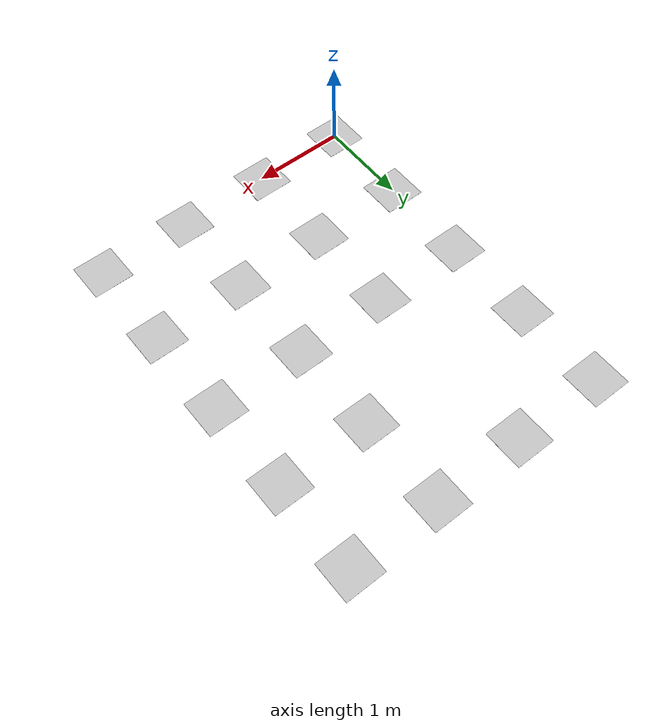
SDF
<sdf version="1.5">
 <world name="default">
  <include><uri>model://aruco_nto_map_txt</uri></include>
  <include><uri>model://aruco_nto_map_txt</uri></include>
  <include><uri>model://sun</uri></include>
  <scene>
   <ambient>0.8 0.8 0.8 1</ambient>
   <background>0.8 0.9 1 1</background>
   <shadows>false</shadows>
   <grid>false</grid>
   <origin_visual>false</origin_visual>
  </scene>
  <physics name="default_physics" default="0" type="ode">
   <gravity>0 0 -9.8066</gravity>
   <ode>
    <solver>
     <type>quick</type>
     <iters>10</iters>
     <sor>1.3</sor>
     <use_dynamic_moi_rescaling>0</use_dynamic_moi_rescaling>
    </solver>
    <constraints>
     <cfm>0</cfm>
     <erp>0.2</erp>
     <contact_max_correcting_vel>100</contact_max_correcting_vel>
     <contact_surface_layer>0.001</contact_surface_layer>
    </constraints>
   </ode>
   <max_step_size>0.004</max_step_size>
   <real_time_factor>1</real_time_factor>
   <real_time_update_rate>250</real_time_update_rate>
   <magnetic_field>6.0e-6 2.3e-5 -4.2e-5</magnetic_field>
  </physics>
 </world>
</sdf>

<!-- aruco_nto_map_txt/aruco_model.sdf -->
<sdf version="1.5">
    <model name="aruco_2_19">
        <static>true</static>
        <link name="aruco_2_19_link">

<visual name="visual_marker_2_143">
    <pose>0.0 0.0 0.0 0.0 0.0 1.5707963267948966</pose>
    <cast_shadows>false</cast_shadows>
    <geometry>
        <box>
            <size>0.44 0.44 1e-3</size>
        </box>
    </geometry>
    <material>
        <script>
            <uri>model://aruco_nto_map_txt/materials/scripts</uri>
            <uri>model://aruco_nto_map_txt/materials/textures</uri>
            <name>aruco/marker_2_143</name>
        </script>
    </material>
</visual>

<visual name="visual_marker_2_142">
    <pose>1.0 0.0 0.0 0.0 0.0 1.5707963267948966</pose>
    <cast_shadows>false</cast_shadows>
    <geometry>
        <box>
            <size>0.44 0.44 1e-3</size>
        </box>
    </geometry>
    <material>
        <script>
            <uri>model://aruco_nto_map_txt/materials/scripts</uri>
            <uri>model://aruco_nto_map_txt/materials/textures</uri>
            <name>aruco/marker_2_142</name>
        </script>
    </material>
</visual>

<visual name="visual_marker_2_147">
    <pose>2.0 0.0 0.0 0.0 0.0 1.5707963267948966</pose>
    <cast_shadows>false</cast_shadows>
    <geometry>
        <box>
            <size>0.44 0.44 1e-3</size>
        </box>
    </geometry>
    <material>
        <script>
            <uri>model://aruco_nto_map_txt/materials/scripts</uri>
            <uri>model://aruco_nto_map_txt/materials/textures</uri>
            <name>aruco/marker_2_147</name>
        </script>
    </material>
</visual>

<visual name="visual_marker_2_128">
    <pose>3.0 0.0 0.0 0.0 0.0 1.5707963267948966</pose>
    <cast_shadows>false</cast_shadows>
    <geometry>
        <box>
            <size>0.44 0.44 1e-3</size>
        </box>
    </geometry>
    <material>
        <script>
            <uri>model://aruco_nto_map_txt/materials/scripts</uri>
            <uri>model://aruco_nto_map_txt/materials/textures</uri>
            <name>aruco/marker_2_128</name>
        </script>
    </material>
</visual>

<visual name="visual_marker_2_144">
    <pose>0.0 1.0 0.0 0.0 0.0 1.5707963267948966</pose>
    <cast_shadows>false</cast_shadows>
    <geometry>
        <box>
            <size>0.44 0.44 1e-3</size>
        </box>
    </geometry>
    <material>
        <script>
            <uri>model://aruco_nto_map_txt/materials/scripts</uri>
            <uri>model://aruco_nto_map_txt/materials/textures</uri>
            <name>aruco/marker_2_144</name>
        </script>
    </material>
</visual>

<visual name="visual_marker_2_157">
    <pose>1.0 1.0 0.0 0.0 0.0 1.5707963267948966</pose>
    <cast_shadows>false</cast_shadows>
    <geometry>
        <box>
            <size>0.44 0.44 1e-3</size>
        </box>
    </geometry>
    <material>
        <script>
            <uri>model://aruco_nto_map_txt/materials/scripts</uri>
            <uri>model://aruco_nto_map_txt/materials/textures</uri>
            <name>aruco/marker_2_157</name>
        </script>
    </material>
</visual>

<visual name="visual_marker_2_158">
    <pose>2.0 1.0 0.0 0.0 0.0 1.5707963267948966</pose>
    <cast_shadows>false</cast_shadows>
    <geometry>
        <box>
            <size>0.44 0.44 1e-3</size>
        </box>
    </geometry>
    <material>
        <script>
            <uri>model://aruco_nto_map_txt/materials/scripts</uri>
            <uri>model://aruco_nto_map_txt/materials/textures</uri>
            <name>aruco/marker_2_158</name>
        </script>
    </material>
</visual>

<visual name="visual_marker_2_125">
    <pose>3.0 1.0 0.0 0.0 0.0 1.5707963267948966</pose>
    <cast_shadows>false</cast_shadows>
    <geometry>
        <box>
            <size>0.44 0.44 1e-3</size>
        </box>
    </geometry>
    <material>
        <script>
            <uri>model://aruco_nto_map_txt/materials/scripts</uri>
            <uri>model://aruco_nto_map_txt/materials/textures</uri>
            <name>aruco/marker_2_125</name>
        </script>
    </material>
</visual>

<visual name="visual_marker_2_145">
    <pose>0.0 2.0 0.0 0.0 0.0 1.5707963267948966</pose>
    <cast_shadows>false</cast_shadows>
    <geometry>
        <box>
            <size>0.44 0.44 1e-3</size>
        </box>
    </geometry>
    <material>
        <script>
            <uri>model://aruco_nto_map_txt/materials/scripts</uri>
            <uri>model://aruco_nto_map_txt/materials/textures</uri>
            <name>aruco/marker_2_145</name>
        </script>
    </material>
</visual>

<visual name="visual_marker_2_146">
    <pose>1.0 2.0 0.0 0.0 0.0 1.5707963267948966</pose>
    <cast_shadows>false</cast_shadows>
    <geometry>
        <box>
            <size>0.44 0.44 1e-3</size>
        </box>
    </geometry>
    <material>
        <script>
            <uri>model://aruco_nto_map_txt/materials/scripts</uri>
            <uri>model://aruco_nto_map_txt/materials/textures</uri>
            <name>aruco/marker_2_146</name>
        </script>
    </material>
</visual>

<visual name="visual_marker_2_127">
    <pose>2.0 2.0 0.0 0.0 0.0 1.5707963267948966</pose>
    <cast_shadows>false</cast_shadows>
    <geometry>
        <box>
            <size>0.44 0.44 1e-3</size>
        </box>
    </geometry>
    <material>
        <script>
            <uri>model://aruco_nto_map_txt/materials/scripts</uri>
            <uri>model://aruco_nto_map_txt/materials/textures</uri>
            <name>aruco/marker_2_127</name>
        </script>
    </material>
</visual>

<visual name="visual_marker_2_126">
    <pose>3.0 2.0 0.0 0.0 0.0 1.5707963267948966</pose>
    <cast_shadows>false</cast_shadows>
    <geometry>
        <box>
            <size>0.44 0.44 1e-3</size>
        </box>
    </geometry>
    <material>
        <script>
            <uri>model://aruco_nto_map_txt/materials/scripts</uri>
            <uri>model://aruco_nto_map_txt/materials/textures</uri>
            <name>aruco/marker_2_126</name>
        </script>
    </material>
</visual>

<visual name="visual_marker_2_138">
    <pose>0.0 3.0 0.0 0.0 0.0 1.5707963267948966</pose>
    <cast_shadows>false</cast_shadows>
    <geometry>
        <box>
            <size>0.44 0.44 1e-3</size>
        </box>
    </geometry>
    <material>
        <script>
            <uri>model://aruco_nto_map_txt/materials/scripts</uri>
            <uri>model://aruco_nto_map_txt/materials/textures</uri>
            <name>aruco/marker_2_138</name>
        </script>
    </material>
</visual>

<visual name="visual_marker_2_160">
    <pose>2.0 3.0 0.0 0.0 0.0 1.5707963267948966</pose>
    <cast_shadows>false</cast_shadows>
    <geometry>
        <box>
            <size>0.44 0.44 1e-3</size>
        </box>
    </geometry>
    <material>
        <script>
            <uri>model://aruco_nto_map_txt/materials/scripts</uri>
            <uri>model://aruco_nto_map_txt/materials/textures</uri>
            <name>aruco/marker_2_160</name>
        </script>
    </material>
</visual>

<visual name="visual_marker_2_155">
    <pose>3.0 3.0 0.0 0.0 0.0 1.5707963267948966</pose>
    <cast_shadows>false</cast_shadows>
    <geometry>
        <box>
            <size>0.44 0.44 1e-3</size>
        </box>
    </geometry>
    <material>
        <script>
            <uri>model://aruco_nto_map_txt/materials/scripts</uri>
            <uri>model://aruco_nto_map_txt/materials/textures</uri>
            <name>aruco/marker_2_155</name>
        </script>
    </material>
</visual>

<visual name="visual_marker_2_139">
    <pose>0.0 4.0 0.0 0.0 0.0 1.5707963267948966</pose>
    <cast_shadows>false</cast_shadows>
    <geometry>
        <box>
            <size>0.44 0.44 1e-3</size>
        </box>
    </geometry>
    <material>
        <script>
            <uri>model://aruco_nto_map_txt/materials/scripts</uri>
            <uri>model://aruco_nto_map_txt/materials/textures</uri>
            <name>aruco/marker_2_139</name>
        </script>
    </material>
</visual>

<visual name="visual_marker_2_148">
    <pose>1.0 4.0 0.0 0.0 0.0 1.5707963267948966</pose>
    <cast_shadows>false</cast_shadows>
    <geometry>
        <box>
            <size>0.44 0.44 1e-3</size>
        </box>
    </geometry>
    <material>
        <script>
            <uri>model://aruco_nto_map_txt/materials/scripts</uri>
            <uri>model://aruco_nto_map_txt/materials/textures</uri>
            <name>aruco/marker_2_148</name>
        </script>
    </material>
</visual>

<visual name="visual_marker_2_156">
    <pose>2.0 4.0 0.0 0.0 0.0 1.5707963267948966</pose>
    <cast_shadows>false</cast_shadows>
    <geometry>
        <box>
            <size>0.44 0.44 1e-3</size>
        </box>
    </geometry>
    <material>
        <script>
            <uri>model://aruco_nto_map_txt/materials/scripts</uri>
            <uri>model://aruco_nto_map_txt/materials/textures</uri>
            <name>aruco/marker_2_156</name>
        </script>
    </material>
</visual>

<visual name="visual_marker_2_159">
    <pose>3.0 4.0 0.0 0.0 0.0 1.5707963267948966</pose>
    <cast_shadows>false</cast_shadows>
    <geometry>
        <box>
            <size>0.44 0.44 1e-3</size>
        </box>
    </geometry>
    <material>
        <script>
            <uri>model://aruco_nto_map_txt/materials/scripts</uri>
            <uri>model://aruco_nto_map_txt/materials/textures</uri>
            <name>aruco/marker_2_159</name>
        </script>
    </material>
</visual>

        </link>
    </model>
</sdf>
